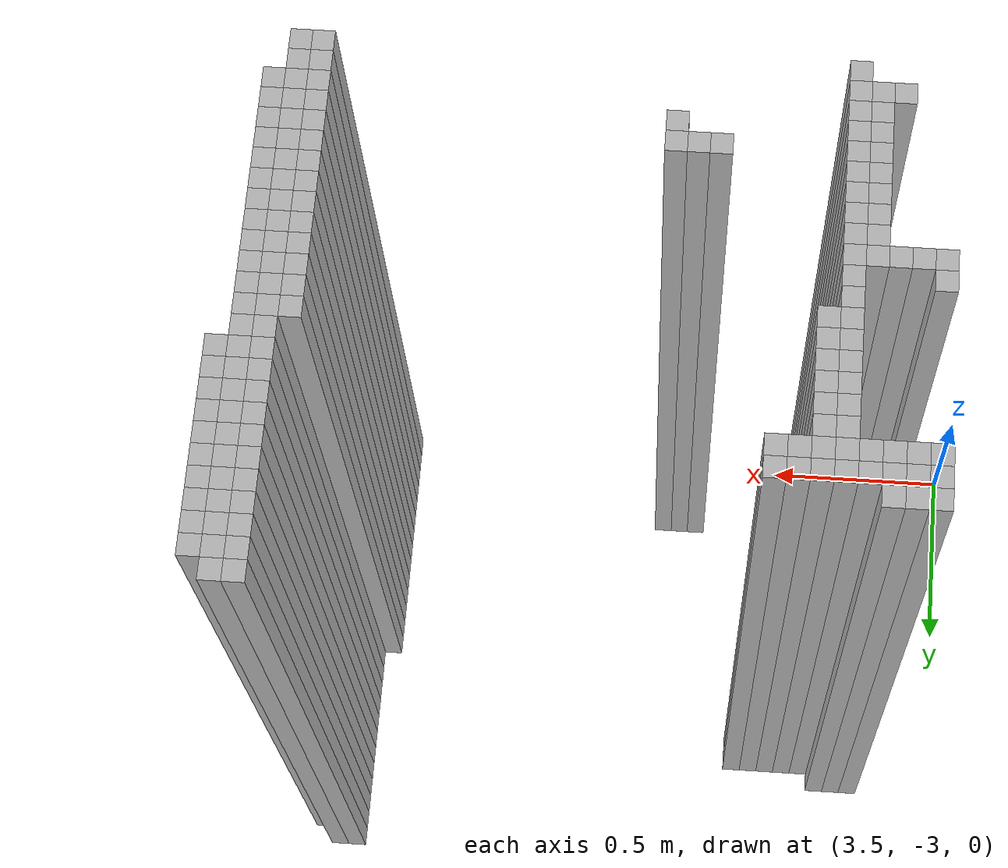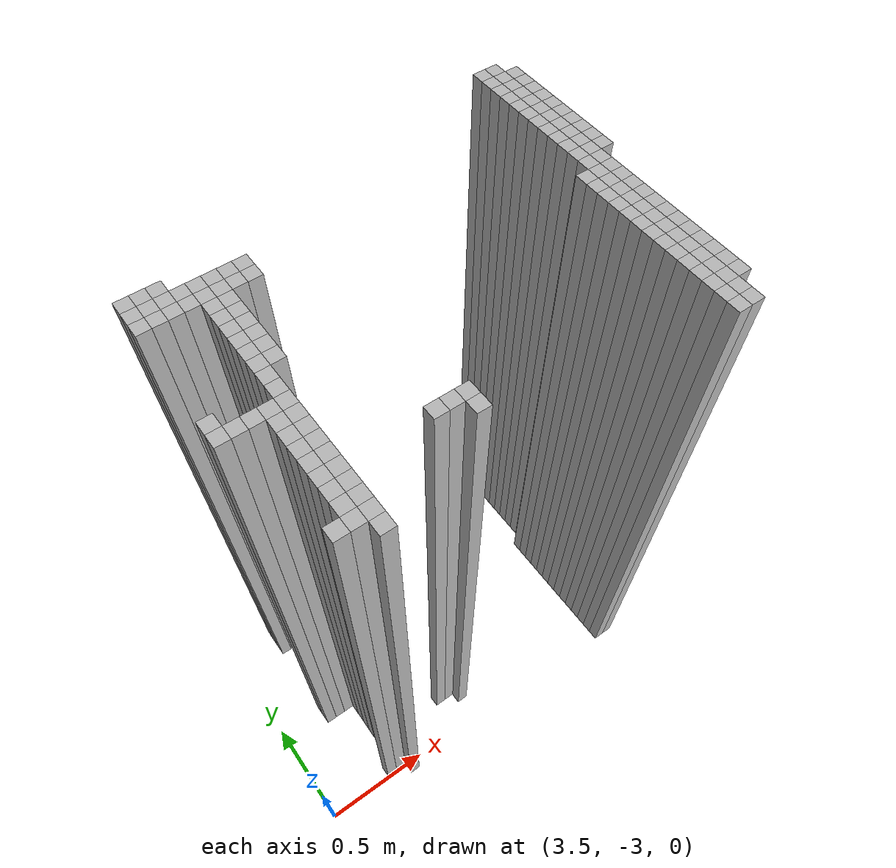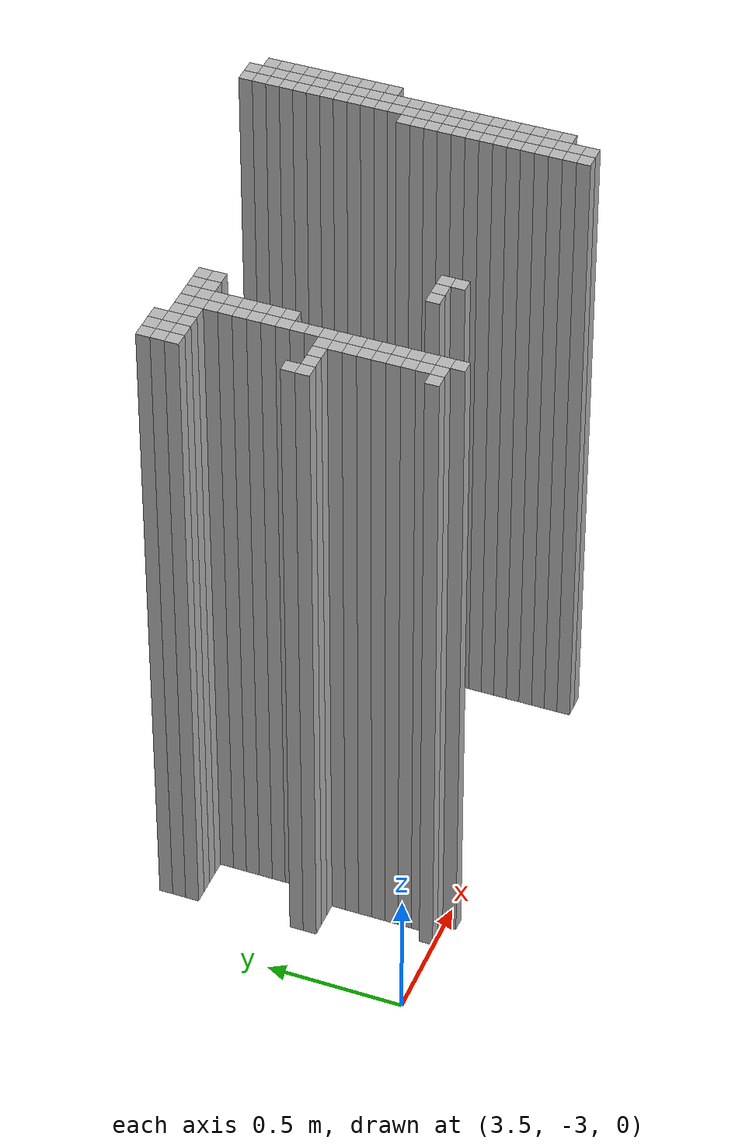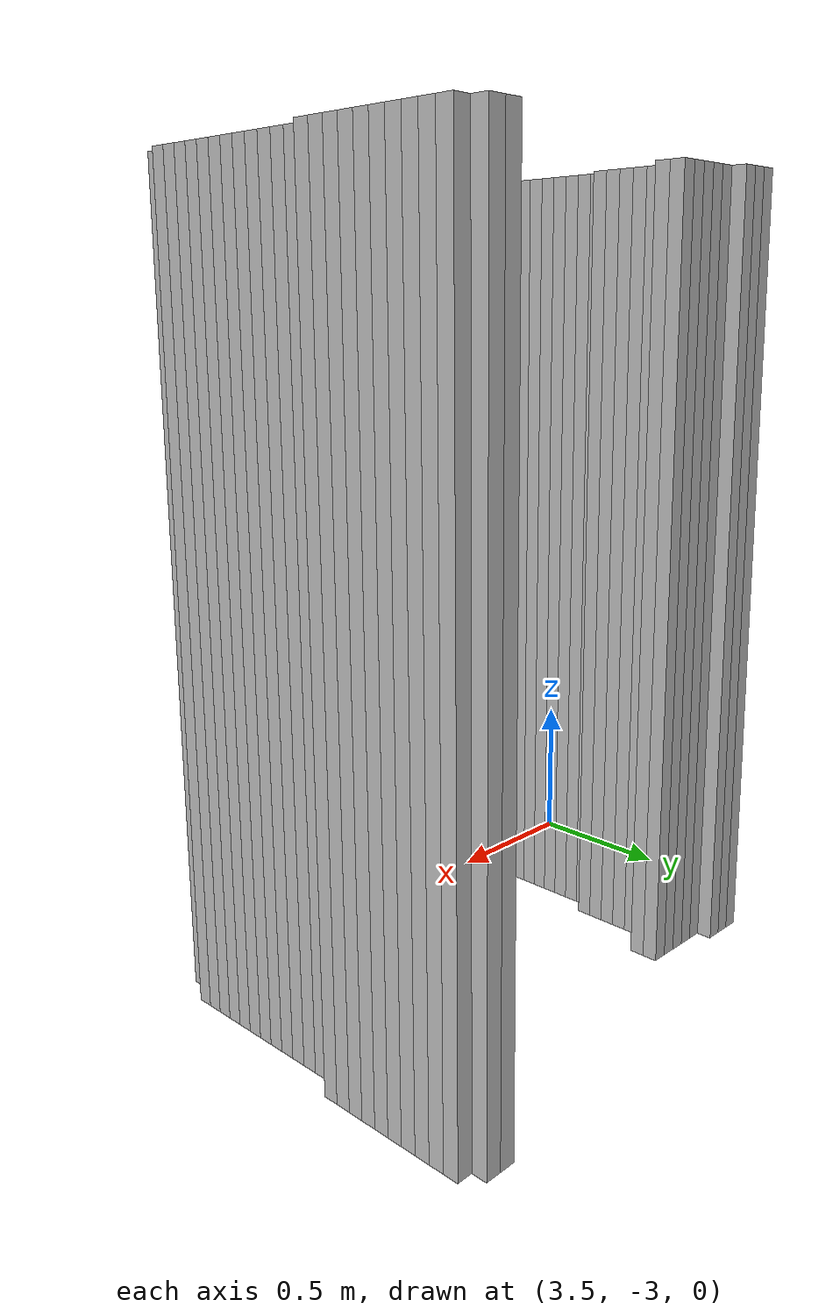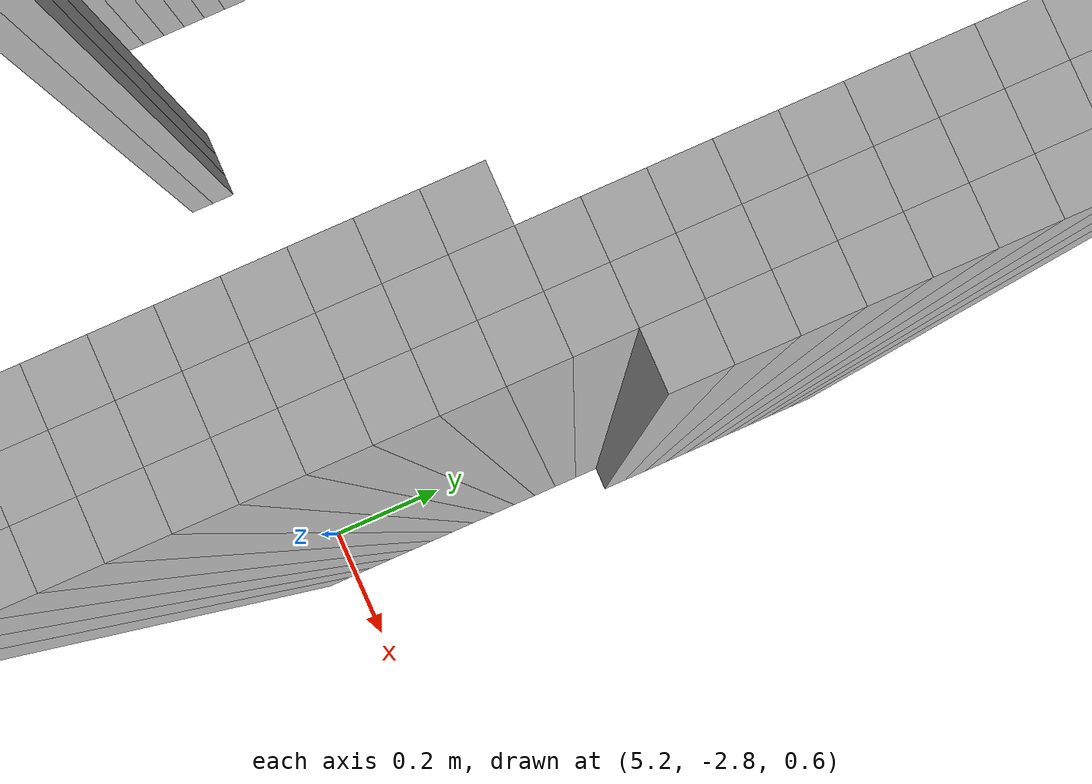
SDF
<sdf version="1.9">
 <world name="map_world">
  <model name="wall_327_189">
   <static>true</static>
   <pose>5.189 -1.770 1.250 0 0 0</pose>
   <link name="link">
    <collision name="collision"><geometry><box><size>0.050 0.050 2.500</size></box></geometry></collision>
    <visual name="visual"><geometry><box><size>0.050 0.050 2.500</size></box></geometry></visual>
   </link>
  </model>
  <model name="wall_328_189">
   <static>true</static>
   <pose>5.239 -1.770 1.250 0 0 0</pose>
   <link name="link">
    <collision name="collision"><geometry><box><size>0.050 0.050 2.500</size></box></geometry></collision>
    <visual name="visual"><geometry><box><size>0.050 0.050 2.500</size></box></geometry></visual>
   </link>
  </model>
  <model name="wall_327_190">
   <static>true</static>
   <pose>5.189 -1.820 1.250 0 0 0</pose>
   <link name="link">
    <collision name="collision"><geometry><box><size>0.050 0.050 2.500</size></box></geometry></collision>
    <visual name="visual"><geometry><box><size>0.050 0.050 2.500</size></box></geometry></visual>
   </link>
  </model>
  <model name="wall_328_190">
   <static>true</static>
   <pose>5.239 -1.820 1.250 0 0 0</pose>
   <link name="link">
    <collision name="collision"><geometry><box><size>0.050 0.050 2.500</size></box></geometry></collision>
    <visual name="visual"><geometry><box><size>0.050 0.050 2.500</size></box></geometry></visual>
   </link>
  </model>
  <model name="wall_329_190">
   <static>true</static>
   <pose>5.289 -1.820 1.250 0 0 0</pose>
   <link name="link">
    <collision name="collision"><geometry><box><size>0.050 0.050 2.500</size></box></geometry></collision>
    <visual name="visual"><geometry><box><size>0.050 0.050 2.500</size></box></geometry></visual>
   </link>
  </model>
  <model name="wall_327_191">
   <static>true</static>
   <pose>5.189 -1.870 1.250 0 0 0</pose>
   <link name="link">
    <collision name="collision"><geometry><box><size>0.050 0.050 2.500</size></box></geometry></collision>
    <visual name="visual"><geometry><box><size>0.050 0.050 2.500</size></box></geometry></visual>
   </link>
  </model>
  <model name="wall_328_191">
   <static>true</static>
   <pose>5.239 -1.870 1.250 0 0 0</pose>
   <link name="link">
    <collision name="collision"><geometry><box><size>0.050 0.050 2.500</size></box></geometry></collision>
    <visual name="visual"><geometry><box><size>0.050 0.050 2.500</size></box></geometry></visual>
   </link>
  </model>
  <model name="wall_329_191">
   <static>true</static>
   <pose>5.289 -1.870 1.250 0 0 0</pose>
   <link name="link">
    <collision name="collision"><geometry><box><size>0.050 0.050 2.500</size></box></geometry></collision>
    <visual name="visual"><geometry><box><size>0.050 0.050 2.500</size></box></geometry></visual>
   </link>
  </model>
  <model name="wall_327_192">
   <static>true</static>
   <pose>5.189 -1.920 1.250 0 0 0</pose>
   <link name="link">
    <collision name="collision"><geometry><box><size>0.050 0.050 2.500</size></box></geometry></collision>
    <visual name="visual"><geometry><box><size>0.050 0.050 2.500</size></box></geometry></visual>
   </link>
  </model>
  <model name="wall_328_192">
   <static>true</static>
   <pose>5.239 -1.920 1.250 0 0 0</pose>
   <link name="link">
    <collision name="collision"><geometry><box><size>0.050 0.050 2.500</size></box></geometry></collision>
    <visual name="visual"><geometry><box><size>0.050 0.050 2.500</size></box></geometry></visual>
   </link>
  </model>
  <model name="wall_329_192">
   <static>true</static>
   <pose>5.289 -1.920 1.250 0 0 0</pose>
   <link name="link">
    <collision name="collision"><geometry><box><size>0.050 0.050 2.500</size></box></geometry></collision>
    <visual name="visual"><geometry><box><size>0.050 0.050 2.500</size></box></geometry></visual>
   </link>
  </model>
  <model name="wall_327_193">
   <static>true</static>
   <pose>5.189 -1.970 1.250 0 0 0</pose>
   <link name="link">
    <collision name="collision"><geometry><box><size>0.050 0.050 2.500</size></box></geometry></collision>
    <visual name="visual"><geometry><box><size>0.050 0.050 2.500</size></box></geometry></visual>
   </link>
  </model>
  <model name="wall_328_193">
   <static>true</static>
   <pose>5.239 -1.970 1.250 0 0 0</pose>
   <link name="link">
    <collision name="collision"><geometry><box><size>0.050 0.050 2.500</size></box></geometry></collision>
    <visual name="visual"><geometry><box><size>0.050 0.050 2.500</size></box></geometry></visual>
   </link>
  </model>
  <model name="wall_329_193">
   <static>true</static>
   <pose>5.289 -1.970 1.250 0 0 0</pose>
   <link name="link">
    <collision name="collision"><geometry><box><size>0.050 0.050 2.500</size></box></geometry></collision>
    <visual name="visual"><geometry><box><size>0.050 0.050 2.500</size></box></geometry></visual>
   </link>
  </model>
  <model name="wall_298_194">
   <static>true</static>
   <pose>3.739 -2.020 1.250 0 0 0</pose>
   <link name="link">
    <collision name="collision"><geometry><box><size>0.050 0.050 2.500</size></box></geometry></collision>
    <visual name="visual"><geometry><box><size>0.050 0.050 2.500</size></box></geometry></visual>
   </link>
  </model>
  <model name="wall_299_194">
   <static>true</static>
   <pose>3.789 -2.020 1.250 0 0 0</pose>
   <link name="link">
    <collision name="collision"><geometry><box><size>0.050 0.050 2.500</size></box></geometry></collision>
    <visual name="visual"><geometry><box><size>0.050 0.050 2.500</size></box></geometry></visual>
   </link>
  </model>
  <model name="wall_300_194">
   <static>true</static>
   <pose>3.839 -2.020 1.250 0 0 0</pose>
   <link name="link">
    <collision name="collision"><geometry><box><size>0.050 0.050 2.500</size></box></geometry></collision>
    <visual name="visual"><geometry><box><size>0.050 0.050 2.500</size></box></geometry></visual>
   </link>
  </model>
  <model name="wall_327_194">
   <static>true</static>
   <pose>5.189 -2.020 1.250 0 0 0</pose>
   <link name="link">
    <collision name="collision"><geometry><box><size>0.050 0.050 2.500</size></box></geometry></collision>
    <visual name="visual"><geometry><box><size>0.050 0.050 2.500</size></box></geometry></visual>
   </link>
  </model>
  <model name="wall_328_194">
   <static>true</static>
   <pose>5.239 -2.020 1.250 0 0 0</pose>
   <link name="link">
    <collision name="collision"><geometry><box><size>0.050 0.050 2.500</size></box></geometry></collision>
    <visual name="visual"><geometry><box><size>0.050 0.050 2.500</size></box></geometry></visual>
   </link>
  </model>
  <model name="wall_329_194">
   <static>true</static>
   <pose>5.289 -2.020 1.250 0 0 0</pose>
   <link name="link">
    <collision name="collision"><geometry><box><size>0.050 0.050 2.500</size></box></geometry></collision>
    <visual name="visual"><geometry><box><size>0.050 0.050 2.500</size></box></geometry></visual>
   </link>
  </model>
  <model name="wall_298_195">
   <static>true</static>
   <pose>3.739 -2.070 1.250 0 0 0</pose>
   <link name="link">
    <collision name="collision"><geometry><box><size>0.050 0.050 2.500</size></box></geometry></collision>
    <visual name="visual"><geometry><box><size>0.050 0.050 2.500</size></box></geometry></visual>
   </link>
  </model>
  <model name="wall_299_195">
   <static>true</static>
   <pose>3.789 -2.070 1.250 0 0 0</pose>
   <link name="link">
    <collision name="collision"><geometry><box><size>0.050 0.050 2.500</size></box></geometry></collision>
    <visual name="visual"><geometry><box><size>0.050 0.050 2.500</size></box></geometry></visual>
   </link>
  </model>
  <model name="wall_300_195">
   <static>true</static>
   <pose>3.839 -2.070 1.250 0 0 0</pose>
   <link name="link">
    <collision name="collision"><geometry><box><size>0.050 0.050 2.500</size></box></geometry></collision>
    <visual name="visual"><geometry><box><size>0.050 0.050 2.500</size></box></geometry></visual>
   </link>
  </model>
  <model name="wall_301_195">
   <static>true</static>
   <pose>3.889 -2.070 1.250 0 0 0</pose>
   <link name="link">
    <collision name="collision"><geometry><box><size>0.050 0.050 2.500</size></box></geometry></collision>
    <visual name="visual"><geometry><box><size>0.050 0.050 2.500</size></box></geometry></visual>
   </link>
  </model>
  <model name="wall_302_195">
   <static>true</static>
   <pose>3.939 -2.070 1.250 0 0 0</pose>
   <link name="link">
    <collision name="collision"><geometry><box><size>0.050 0.050 2.500</size></box></geometry></collision>
    <visual name="visual"><geometry><box><size>0.050 0.050 2.500</size></box></geometry></visual>
   </link>
  </model>
  <model name="wall_303_195">
   <static>true</static>
   <pose>3.989 -2.070 1.250 0 0 0</pose>
   <link name="link">
    <collision name="collision"><geometry><box><size>0.050 0.050 2.500</size></box></geometry></collision>
    <visual name="visual"><geometry><box><size>0.050 0.050 2.500</size></box></geometry></visual>
   </link>
  </model>
  <model name="wall_304_195">
   <static>true</static>
   <pose>4.039 -2.070 1.250 0 0 0</pose>
   <link name="link">
    <collision name="collision"><geometry><box><size>0.050 0.050 2.500</size></box></geometry></collision>
    <visual name="visual"><geometry><box><size>0.050 0.050 2.500</size></box></geometry></visual>
   </link>
  </model>
  <model name="wall_305_195">
   <static>true</static>
   <pose>4.089 -2.070 1.250 0 0 0</pose>
   <link name="link">
    <collision name="collision"><geometry><box><size>0.050 0.050 2.500</size></box></geometry></collision>
    <visual name="visual"><geometry><box><size>0.050 0.050 2.500</size></box></geometry></visual>
   </link>
  </model>
  <model name="wall_327_195">
   <static>true</static>
   <pose>5.189 -2.070 1.250 0 0 0</pose>
   <link name="link">
    <collision name="collision"><geometry><box><size>0.050 0.050 2.500</size></box></geometry></collision>
    <visual name="visual"><geometry><box><size>0.050 0.050 2.500</size></box></geometry></visual>
   </link>
  </model>
  <model name="wall_328_195">
   <static>true</static>
   <pose>5.239 -2.070 1.250 0 0 0</pose>
   <link name="link">
    <collision name="collision"><geometry><box><size>0.050 0.050 2.500</size></box></geometry></collision>
    <visual name="visual"><geometry><box><size>0.050 0.050 2.500</size></box></geometry></visual>
   </link>
  </model>
  <model name="wall_329_195">
   <static>true</static>
   <pose>5.289 -2.070 1.250 0 0 0</pose>
   <link name="link">
    <collision name="collision"><geometry><box><size>0.050 0.050 2.500</size></box></geometry></collision>
    <visual name="visual"><geometry><box><size>0.050 0.050 2.500</size></box></geometry></visual>
   </link>
  </model>
  <model name="wall_298_196">
   <static>true</static>
   <pose>3.739 -2.120 1.250 0 0 0</pose>
   <link name="link">
    <collision name="collision"><geometry><box><size>0.050 0.050 2.500</size></box></geometry></collision>
    <visual name="visual"><geometry><box><size>0.050 0.050 2.500</size></box></geometry></visual>
   </link>
  </model>
  <model name="wall_299_196">
   <static>true</static>
   <pose>3.789 -2.120 1.250 0 0 0</pose>
   <link name="link">
    <collision name="collision"><geometry><box><size>0.050 0.050 2.500</size></box></geometry></collision>
    <visual name="visual"><geometry><box><size>0.050 0.050 2.500</size></box></geometry></visual>
   </link>
  </model>
  <model name="wall_300_196">
   <static>true</static>
   <pose>3.839 -2.120 1.250 0 0 0</pose>
   <link name="link">
    <collision name="collision"><geometry><box><size>0.050 0.050 2.500</size></box></geometry></collision>
    <visual name="visual"><geometry><box><size>0.050 0.050 2.500</size></box></geometry></visual>
   </link>
  </model>
  <model name="wall_301_196">
   <static>true</static>
   <pose>3.889 -2.120 1.250 0 0 0</pose>
   <link name="link">
    <collision name="collision"><geometry><box><size>0.050 0.050 2.500</size></box></geometry></collision>
    <visual name="visual"><geometry><box><size>0.050 0.050 2.500</size></box></geometry></visual>
   </link>
  </model>
  <model name="wall_302_196">
   <static>true</static>
   <pose>3.939 -2.120 1.250 0 0 0</pose>
   <link name="link">
    <collision name="collision"><geometry><box><size>0.050 0.050 2.500</size></box></geometry></collision>
    <visual name="visual"><geometry><box><size>0.050 0.050 2.500</size></box></geometry></visual>
   </link>
  </model>
  <model name="wall_303_196">
   <static>true</static>
   <pose>3.989 -2.120 1.250 0 0 0</pose>
   <link name="link">
    <collision name="collision"><geometry><box><size>0.050 0.050 2.500</size></box></geometry></collision>
    <visual name="visual"><geometry><box><size>0.050 0.050 2.500</size></box></geometry></visual>
   </link>
  </model>
  <model name="wall_304_196">
   <static>true</static>
   <pose>4.039 -2.120 1.250 0 0 0</pose>
   <link name="link">
    <collision name="collision"><geometry><box><size>0.050 0.050 2.500</size></box></geometry></collision>
    <visual name="visual"><geometry><box><size>0.050 0.050 2.500</size></box></geometry></visual>
   </link>
  </model>
  <model name="wall_305_196">
   <static>true</static>
   <pose>4.089 -2.120 1.250 0 0 0</pose>
   <link name="link">
    <collision name="collision"><geometry><box><size>0.050 0.050 2.500</size></box></geometry></collision>
    <visual name="visual"><geometry><box><size>0.050 0.050 2.500</size></box></geometry></visual>
   </link>
  </model>
  <model name="wall_327_196">
   <static>true</static>
   <pose>5.189 -2.120 1.250 0 0 0</pose>
   <link name="link">
    <collision name="collision"><geometry><box><size>0.050 0.050 2.500</size></box></geometry></collision>
    <visual name="visual"><geometry><box><size>0.050 0.050 2.500</size></box></geometry></visual>
   </link>
  </model>
  <model name="wall_328_196">
   <static>true</static>
   <pose>5.239 -2.120 1.250 0 0 0</pose>
   <link name="link">
    <collision name="collision"><geometry><box><size>0.050 0.050 2.500</size></box></geometry></collision>
    <visual name="visual"><geometry><box><size>0.050 0.050 2.500</size></box></geometry></visual>
   </link>
  </model>
  <model name="wall_329_196">
   <static>true</static>
   <pose>5.289 -2.120 1.250 0 0 0</pose>
   <link name="link">
    <collision name="collision"><geometry><box><size>0.050 0.050 2.500</size></box></geometry></collision>
    <visual name="visual"><geometry><box><size>0.050 0.050 2.500</size></box></geometry></visual>
   </link>
  </model>
  <model name="wall_302_197">
   <static>true</static>
   <pose>3.939 -2.170 1.250 0 0 0</pose>
   <link name="link">
    <collision name="collision"><geometry><box><size>0.050 0.050 2.500</size></box></geometry></collision>
    <visual name="visual"><geometry><box><size>0.050 0.050 2.500</size></box></geometry></visual>
   </link>
  </model>
  <model name="wall_303_197">
   <static>true</static>
   <pose>3.989 -2.170 1.250 0 0 0</pose>
   <link name="link">
    <collision name="collision"><geometry><box><size>0.050 0.050 2.500</size></box></geometry></collision>
    <visual name="visual"><geometry><box><size>0.050 0.050 2.500</size></box></geometry></visual>
   </link>
  </model>
  <model name="wall_327_197">
   <static>true</static>
   <pose>5.189 -2.170 1.250 0 0 0</pose>
   <link name="link">
    <collision name="collision"><geometry><box><size>0.050 0.050 2.500</size></box></geometry></collision>
    <visual name="visual"><geometry><box><size>0.050 0.050 2.500</size></box></geometry></visual>
   </link>
  </model>
  <model name="wall_328_197">
   <static>true</static>
   <pose>5.239 -2.170 1.250 0 0 0</pose>
   <link name="link">
    <collision name="collision"><geometry><box><size>0.050 0.050 2.500</size></box></geometry></collision>
    <visual name="visual"><geometry><box><size>0.050 0.050 2.500</size></box></geometry></visual>
   </link>
  </model>
  <model name="wall_329_197">
   <static>true</static>
   <pose>5.289 -2.170 1.250 0 0 0</pose>
   <link name="link">
    <collision name="collision"><geometry><box><size>0.050 0.050 2.500</size></box></geometry></collision>
    <visual name="visual"><geometry><box><size>0.050 0.050 2.500</size></box></geometry></visual>
   </link>
  </model>
  <model name="wall_302_198">
   <static>true</static>
   <pose>3.939 -2.220 1.250 0 0 0</pose>
   <link name="link">
    <collision name="collision"><geometry><box><size>0.050 0.050 2.500</size></box></geometry></collision>
    <visual name="visual"><geometry><box><size>0.050 0.050 2.500</size></box></geometry></visual>
   </link>
  </model>
  <model name="wall_303_198">
   <static>true</static>
   <pose>3.989 -2.220 1.250 0 0 0</pose>
   <link name="link">
    <collision name="collision"><geometry><box><size>0.050 0.050 2.500</size></box></geometry></collision>
    <visual name="visual"><geometry><box><size>0.050 0.050 2.500</size></box></geometry></visual>
   </link>
  </model>
  <model name="wall_327_198">
   <static>true</static>
   <pose>5.189 -2.220 1.250 0 0 0</pose>
   <link name="link">
    <collision name="collision"><geometry><box><size>0.050 0.050 2.500</size></box></geometry></collision>
    <visual name="visual"><geometry><box><size>0.050 0.050 2.500</size></box></geometry></visual>
   </link>
  </model>
  <model name="wall_328_198">
   <static>true</static>
   <pose>5.239 -2.220 1.250 0 0 0</pose>
   <link name="link">
    <collision name="collision"><geometry><box><size>0.050 0.050 2.500</size></box></geometry></collision>
    <visual name="visual"><geometry><box><size>0.050 0.050 2.500</size></box></geometry></visual>
   </link>
  </model>
  <model name="wall_329_198">
   <static>true</static>
   <pose>5.289 -2.220 1.250 0 0 0</pose>
   <link name="link">
    <collision name="collision"><geometry><box><size>0.050 0.050 2.500</size></box></geometry></collision>
    <visual name="visual"><geometry><box><size>0.050 0.050 2.500</size></box></geometry></visual>
   </link>
  </model>
  <model name="wall_302_199">
   <static>true</static>
   <pose>3.939 -2.270 1.250 0 0 0</pose>
   <link name="link">
    <collision name="collision"><geometry><box><size>0.050 0.050 2.500</size></box></geometry></collision>
    <visual name="visual"><geometry><box><size>0.050 0.050 2.500</size></box></geometry></visual>
   </link>
  </model>
  <model name="wall_303_199">
   <static>true</static>
   <pose>3.989 -2.270 1.250 0 0 0</pose>
   <link name="link">
    <collision name="collision"><geometry><box><size>0.050 0.050 2.500</size></box></geometry></collision>
    <visual name="visual"><geometry><box><size>0.050 0.050 2.500</size></box></geometry></visual>
   </link>
  </model>
  <model name="wall_327_199">
   <static>true</static>
   <pose>5.189 -2.270 1.250 0 0 0</pose>
   <link name="link">
    <collision name="collision"><geometry><box><size>0.050 0.050 2.500</size></box></geometry></collision>
    <visual name="visual"><geometry><box><size>0.050 0.050 2.500</size></box></geometry></visual>
   </link>
  </model>
  <model name="wall_328_199">
   <static>true</static>
   <pose>5.239 -2.270 1.250 0 0 0</pose>
   <link name="link">
    <collision name="collision"><geometry><box><size>0.050 0.050 2.500</size></box></geometry></collision>
    <visual name="visual"><geometry><box><size>0.050 0.050 2.500</size></box></geometry></visual>
   </link>
  </model>
  <model name="wall_329_199">
   <static>true</static>
   <pose>5.289 -2.270 1.250 0 0 0</pose>
   <link name="link">
    <collision name="collision"><geometry><box><size>0.050 0.050 2.500</size></box></geometry></collision>
    <visual name="visual"><geometry><box><size>0.050 0.050 2.500</size></box></geometry></visual>
   </link>
  </model>
  <model name="wall_302_200">
   <static>true</static>
   <pose>3.939 -2.320 1.250 0 0 0</pose>
   <link name="link">
    <collision name="collision"><geometry><box><size>0.050 0.050 2.500</size></box></geometry></collision>
    <visual name="visual"><geometry><box><size>0.050 0.050 2.500</size></box></geometry></visual>
   </link>
  </model>
  <model name="wall_303_200">
   <static>true</static>
   <pose>3.989 -2.320 1.250 0 0 0</pose>
   <link name="link">
    <collision name="collision"><geometry><box><size>0.050 0.050 2.500</size></box></geometry></collision>
    <visual name="visual"><geometry><box><size>0.050 0.050 2.500</size></box></geometry></visual>
   </link>
  </model>
  <model name="wall_327_200">
   <static>true</static>
   <pose>5.189 -2.320 1.250 0 0 0</pose>
   <link name="link">
    <collision name="collision"><geometry><box><size>0.050 0.050 2.500</size></box></geometry></collision>
    <visual name="visual"><geometry><box><size>0.050 0.050 2.500</size></box></geometry></visual>
   </link>
  </model>
  <model name="wall_328_200">
   <static>true</static>
   <pose>5.239 -2.320 1.250 0 0 0</pose>
   <link name="link">
    <collision name="collision"><geometry><box><size>0.050 0.050 2.500</size></box></geometry></collision>
    <visual name="visual"><geometry><box><size>0.050 0.050 2.500</size></box></geometry></visual>
   </link>
  </model>
  <model name="wall_302_201">
   <static>true</static>
   <pose>3.939 -2.370 1.250 0 0 0</pose>
   <link name="link">
    <collision name="collision"><geometry><box><size>0.050 0.050 2.500</size></box></geometry></collision>
    <visual name="visual"><geometry><box><size>0.050 0.050 2.500</size></box></geometry></visual>
   </link>
  </model>
  <model name="wall_303_201">
   <static>true</static>
   <pose>3.989 -2.370 1.250 0 0 0</pose>
   <link name="link">
    <collision name="collision"><geometry><box><size>0.050 0.050 2.500</size></box></geometry></collision>
    <visual name="visual"><geometry><box><size>0.050 0.050 2.500</size></box></geometry></visual>
   </link>
  </model>
  <model name="wall_326_201">
   <static>true</static>
   <pose>5.139 -2.370 1.250 0 0 0</pose>
   <link name="link">
    <collision name="collision"><geometry><box><size>0.050 0.050 2.500</size></box></geometry></collision>
    <visual name="visual"><geometry><box><size>0.050 0.050 2.500</size></box></geometry></visual>
   </link>
  </model>
  <model name="wall_327_201">
   <static>true</static>
   <pose>5.189 -2.370 1.250 0 0 0</pose>
   <link name="link">
    <collision name="collision"><geometry><box><size>0.050 0.050 2.500</size></box></geometry></collision>
    <visual name="visual"><geometry><box><size>0.050 0.050 2.500</size></box></geometry></visual>
   </link>
  </model>
  <model name="wall_328_201">
   <static>true</static>
   <pose>5.239 -2.370 1.250 0 0 0</pose>
   <link name="link">
    <collision name="collision"><geometry><box><size>0.050 0.050 2.500</size></box></geometry></collision>
    <visual name="visual"><geometry><box><size>0.050 0.050 2.500</size></box></geometry></visual>
   </link>
  </model>
  <model name="wall_302_202">
   <static>true</static>
   <pose>3.939 -2.420 1.250 0 0 0</pose>
   <link name="link">
    <collision name="collision"><geometry><box><size>0.050 0.050 2.500</size></box></geometry></collision>
    <visual name="visual"><geometry><box><size>0.050 0.050 2.500</size></box></geometry></visual>
   </link>
  </model>
  <model name="wall_303_202">
   <static>true</static>
   <pose>3.989 -2.420 1.250 0 0 0</pose>
   <link name="link">
    <collision name="collision"><geometry><box><size>0.050 0.050 2.500</size></box></geometry></collision>
    <visual name="visual"><geometry><box><size>0.050 0.050 2.500</size></box></geometry></visual>
   </link>
  </model>
  <model name="wall_326_202">
   <static>true</static>
   <pose>5.139 -2.420 1.250 0 0 0</pose>
   <link name="link">
    <collision name="collision"><geometry><box><size>0.050 0.050 2.500</size></box></geometry></collision>
    <visual name="visual"><geometry><box><size>0.050 0.050 2.500</size></box></geometry></visual>
   </link>
  </model>
  <model name="wall_327_202">
   <static>true</static>
   <pose>5.189 -2.420 1.250 0 0 0</pose>
   <link name="link">
    <collision name="collision"><geometry><box><size>0.050 0.050 2.500</size></box></geometry></collision>
    <visual name="visual"><geometry><box><size>0.050 0.050 2.500</size></box></geometry></visual>
   </link>
  </model>
  <model name="wall_328_202">
   <static>true</static>
   <pose>5.239 -2.420 1.250 0 0 0</pose>
   <link name="link">
    <collision name="collision"><geometry><box><size>0.050 0.050 2.500</size></box></geometry></collision>
    <visual name="visual"><geometry><box><size>0.050 0.050 2.500</size></box></geometry></visual>
   </link>
  </model>
  <model name="wall_302_203">
   <static>true</static>
   <pose>3.939 -2.470 1.250 0 0 0</pose>
   <link name="link">
    <collision name="collision"><geometry><box><size>0.050 0.050 2.500</size></box></geometry></collision>
    <visual name="visual"><geometry><box><size>0.050 0.050 2.500</size></box></geometry></visual>
   </link>
  </model>
  <model name="wall_326_203">
   <static>true</static>
   <pose>5.139 -2.470 1.250 0 0 0</pose>
   <link name="link">
    <collision name="collision"><geometry><box><size>0.050 0.050 2.500</size></box></geometry></collision>
    <visual name="visual"><geometry><box><size>0.050 0.050 2.500</size></box></geometry></visual>
   </link>
  </model>
  <model name="wall_327_203">
   <static>true</static>
   <pose>5.189 -2.470 1.250 0 0 0</pose>
   <link name="link">
    <collision name="collision"><geometry><box><size>0.050 0.050 2.500</size></box></geometry></collision>
    <visual name="visual"><geometry><box><size>0.050 0.050 2.500</size></box></geometry></visual>
   </link>
  </model>
  <model name="wall_328_203">
   <static>true</static>
   <pose>5.239 -2.470 1.250 0 0 0</pose>
   <link name="link">
    <collision name="collision"><geometry><box><size>0.050 0.050 2.500</size></box></geometry></collision>
    <visual name="visual"><geometry><box><size>0.050 0.050 2.500</size></box></geometry></visual>
   </link>
  </model>
  <model name="wall_298_204">
   <static>true</static>
   <pose>3.739 -2.520 1.250 0 0 0</pose>
   <link name="link">
    <collision name="collision"><geometry><box><size>0.050 0.050 2.500</size></box></geometry></collision>
    <visual name="visual"><geometry><box><size>0.050 0.050 2.500</size></box></geometry></visual>
   </link>
  </model>
  <model name="wall_302_204">
   <static>true</static>
   <pose>3.939 -2.520 1.250 0 0 0</pose>
   <link name="link">
    <collision name="collision"><geometry><box><size>0.050 0.050 2.500</size></box></geometry></collision>
    <visual name="visual"><geometry><box><size>0.050 0.050 2.500</size></box></geometry></visual>
   </link>
  </model>
  <model name="wall_326_204">
   <static>true</static>
   <pose>5.139 -2.520 1.250 0 0 0</pose>
   <link name="link">
    <collision name="collision"><geometry><box><size>0.050 0.050 2.500</size></box></geometry></collision>
    <visual name="visual"><geometry><box><size>0.050 0.050 2.500</size></box></geometry></visual>
   </link>
  </model>
  <model name="wall_327_204">
   <static>true</static>
   <pose>5.189 -2.520 1.250 0 0 0</pose>
   <link name="link">
    <collision name="collision"><geometry><box><size>0.050 0.050 2.500</size></box></geometry></collision>
    <visual name="visual"><geometry><box><size>0.050 0.050 2.500</size></box></geometry></visual>
   </link>
  </model>
  <model name="wall_328_204">
   <static>true</static>
   <pose>5.239 -2.520 1.250 0 0 0</pose>
   <link name="link">
    <collision name="collision"><geometry><box><size>0.050 0.050 2.500</size></box></geometry></collision>
    <visual name="visual"><geometry><box><size>0.050 0.050 2.500</size></box></geometry></visual>
   </link>
  </model>
  <model name="wall_298_205">
   <static>true</static>
   <pose>3.739 -2.570 1.250 0 0 0</pose>
   <link name="link">
    <collision name="collision"><geometry><box><size>0.050 0.050 2.500</size></box></geometry></collision>
    <visual name="visual"><geometry><box><size>0.050 0.050 2.500</size></box></geometry></visual>
   </link>
  </model>
  <model name="wall_299_205">
   <static>true</static>
   <pose>3.789 -2.570 1.250 0 0 0</pose>
   <link name="link">
    <collision name="collision"><geometry><box><size>0.050 0.050 2.500</size></box></geometry></collision>
    <visual name="visual"><geometry><box><size>0.050 0.050 2.500</size></box></geometry></visual>
   </link>
  </model>
  <model name="wall_300_205">
   <static>true</static>
   <pose>3.839 -2.570 1.250 0 0 0</pose>
   <link name="link">
    <collision name="collision"><geometry><box><size>0.050 0.050 2.500</size></box></geometry></collision>
    <visual name="visual"><geometry><box><size>0.050 0.050 2.500</size></box></geometry></visual>
   </link>
  </model>
  <model name="wall_301_205">
   <static>true</static>
   <pose>3.889 -2.570 1.250 0 0 0</pose>
   <link name="link">
    <collision name="collision"><geometry><box><size>0.050 0.050 2.500</size></box></geometry></collision>
    <visual name="visual"><geometry><box><size>0.050 0.050 2.500</size></box></geometry></visual>
   </link>
  </model>
  <model name="wall_302_205">
   <static>true</static>
   <pose>3.939 -2.570 1.250 0 0 0</pose>
   <link name="link">
    <collision name="collision"><geometry><box><size>0.050 0.050 2.500</size></box></geometry></collision>
    <visual name="visual"><geometry><box><size>0.050 0.050 2.500</size></box></geometry></visual>
   </link>
  </model>
  <model name="wall_326_205">
   <static>true</static>
   <pose>5.139 -2.570 1.250 0 0 0</pose>
   <link name="link">
    <collision name="collision"><geometry><box><size>0.050 0.050 2.500</size></box></geometry></collision>
    <visual name="visual"><geometry><box><size>0.050 0.050 2.500</size></box></geometry></visual>
   </link>
  </model>
  <model name="wall_327_205">
   <static>true</static>
   <pose>5.189 -2.570 1.250 0 0 0</pose>
   <link name="link">
    <collision name="collision"><geometry><box><size>0.050 0.050 2.500</size></box></geometry></collision>
    <visual name="visual"><geometry><box><size>0.050 0.050 2.500</size></box></geometry></visual>
   </link>
  </model>
  <model name="wall_328_205">
   <static>true</static>
   <pose>5.239 -2.570 1.250 0 0 0</pose>
   <link name="link">
    <collision name="collision"><geometry><box><size>0.050 0.050 2.500</size></box></geometry></collision>
    <visual name="visual"><geometry><box><size>0.050 0.050 2.500</size></box></geometry></visual>
   </link>
  </model>
  <model name="wall_301_206">
   <static>true</static>
   <pose>3.889 -2.620 1.250 0 0 0</pose>
   <link name="link">
    <collision name="collision"><geometry><box><size>0.050 0.050 2.500</size></box></geometry></collision>
    <visual name="visual"><geometry><box><size>0.050 0.050 2.500</size></box></geometry></visual>
   </link>
  </model>
  <model name="wall_302_206">
   <static>true</static>
   <pose>3.939 -2.620 1.250 0 0 0</pose>
   <link name="link">
    <collision name="collision"><geometry><box><size>0.050 0.050 2.500</size></box></geometry></collision>
    <visual name="visual"><geometry><box><size>0.050 0.050 2.500</size></box></geometry></visual>
   </link>
  </model>
  <model name="wall_326_206">
   <static>true</static>
   <pose>5.139 -2.620 1.250 0 0 0</pose>
   <link name="link">
    <collision name="collision"><geometry><box><size>0.050 0.050 2.500</size></box></geometry></collision>
    <visual name="visual"><geometry><box><size>0.050 0.050 2.500</size></box></geometry></visual>
   </link>
  </model>
  <model name="wall_327_206">
   <static>true</static>
   <pose>5.189 -2.620 1.250 0 0 0</pose>
   <link name="link">
    <collision name="collision"><geometry><box><size>0.050 0.050 2.500</size></box></geometry></collision>
    <visual name="visual"><geometry><box><size>0.050 0.050 2.500</size></box></geometry></visual>
   </link>
  </model>
  <model name="wall_328_206">
   <static>true</static>
   <pose>5.239 -2.620 1.250 0 0 0</pose>
   <link name="link">
    <collision name="collision"><geometry><box><size>0.050 0.050 2.500</size></box></geometry></collision>
    <visual name="visual"><geometry><box><size>0.050 0.050 2.500</size></box></geometry></visual>
   </link>
  </model>
  <model name="wall_301_207">
   <static>true</static>
   <pose>3.889 -2.670 1.250 0 0 0</pose>
   <link name="link">
    <collision name="collision"><geometry><box><size>0.050 0.050 2.500</size></box></geometry></collision>
    <visual name="visual"><geometry><box><size>0.050 0.050 2.500</size></box></geometry></visual>
   </link>
  </model>
  <model name="wall_302_207">
   <static>true</static>
   <pose>3.939 -2.670 1.250 0 0 0</pose>
   <link name="link">
    <collision name="collision"><geometry><box><size>0.050 0.050 2.500</size></box></geometry></collision>
    <visual name="visual"><geometry><box><size>0.050 0.050 2.500</size></box></geometry></visual>
   </link>
  </model>
  <model name="wall_326_207">
   <static>true</static>
   <pose>5.139 -2.670 1.250 0 0 0</pose>
   <link name="link">
    <collision name="collision"><geometry><box><size>0.050 0.050 2.500</size></box></geometry></collision>
    <visual name="visual"><geometry><box><size>0.050 0.050 2.500</size></box></geometry></visual>
   </link>
  </model>
  <model name="wall_327_207">
   <static>true</static>
   <pose>5.189 -2.670 1.250 0 0 0</pose>
   <link name="link">
    <collision name="collision"><geometry><box><size>0.050 0.050 2.500</size></box></geometry></collision>
    <visual name="visual"><geometry><box><size>0.050 0.050 2.500</size></box></geometry></visual>
   </link>
  </model>
  <model name="wall_328_207">
   <static>true</static>
   <pose>5.239 -2.670 1.250 0 0 0</pose>
   <link name="link">
    <collision name="collision"><geometry><box><size>0.050 0.050 2.500</size></box></geometry></collision>
    <visual name="visual"><geometry><box><size>0.050 0.050 2.500</size></box></geometry></visual>
   </link>
  </model>
  <model name="wall_301_208">
   <static>true</static>
   <pose>3.889 -2.720 1.250 0 0 0</pose>
   <link name="link">
    <collision name="collision"><geometry><box><size>0.050 0.050 2.500</size></box></geometry></collision>
    <visual name="visual"><geometry><box><size>0.050 0.050 2.500</size></box></geometry></visual>
   </link>
  </model>
  <model name="wall_302_208">
   <static>true</static>
   <pose>3.939 -2.720 1.250 0 0 0</pose>
   <link name="link">
    <collision name="collision"><geometry><box><size>0.050 0.050 2.500</size></box></geometry></collision>
    <visual name="visual"><geometry><box><size>0.050 0.050 2.500</size></box></geometry></visual>
   </link>
  </model>
  <model name="wall_326_208">
   <static>true</static>
   <pose>5.139 -2.720 1.250 0 0 0</pose>
   <link name="link">
    <collision name="collision"><geometry><box><size>0.050 0.050 2.500</size></box></geometry></collision>
    <visual name="visual"><geometry><box><size>0.050 0.050 2.500</size></box></geometry></visual>
   </link>
  </model>
  <model name="wall_327_208">
   <static>true</static>
   <pose>5.189 -2.720 1.250 0 0 0</pose>
   <link name="link">
    <collision name="collision"><geometry><box><size>0.050 0.050 2.500</size></box></geometry></collision>
    <visual name="visual"><geometry><box><size>0.050 0.050 2.500</size></box></geometry></visual>
   </link>
  </model>
  <model name="wall_328_208">
   <static>true</static>
   <pose>5.239 -2.720 1.250 0 0 0</pose>
   <link name="link">
    <collision name="collision"><geometry><box><size>0.050 0.050 2.500</size></box></geometry></collision>
    <visual name="visual"><geometry><box><size>0.050 0.050 2.500</size></box></geometry></visual>
   </link>
  </model>
  <model name="wall_301_209">
   <static>true</static>
   <pose>3.889 -2.770 1.250 0 0 0</pose>
   <link name="link">
    <collision name="collision"><geometry><box><size>0.050 0.050 2.500</size></box></geometry></collision>
    <visual name="visual"><geometry><box><size>0.050 0.050 2.500</size></box></geometry></visual>
   </link>
  </model>
  <model name="wall_302_209">
   <static>true</static>
   <pose>3.939 -2.770 1.250 0 0 0</pose>
   <link name="link">
    <collision name="collision"><geometry><box><size>0.050 0.050 2.500</size></box></geometry></collision>
    <visual name="visual"><geometry><box><size>0.050 0.050 2.500</size></box></geometry></visual>
   </link>
  </model>
  <model name="wall_326_209">
   <static>true</static>
   <pose>5.139 -2.770 1.250 0 0 0</pose>
   <link name="link">
    <collision name="collision"><geometry><box><size>0.050 0.050 2.500</size></box></geometry></collision>
    <visual name="visual"><geometry><box><size>0.050 0.050 2.500</size></box></geometry></visual>
   </link>
  </model>
  <model name="wall_327_209">
   <static>true</static>
   <pose>5.189 -2.770 1.250 0 0 0</pose>
   <link name="link">
    <collision name="collision"><geometry><box><size>0.050 0.050 2.500</size></box></geometry></collision>
    <visual name="visual"><geometry><box><size>0.050 0.050 2.500</size></box></geometry></visual>
   </link>
  </model>
  <model name="wall_328_209">
   <static>true</static>
   <pose>5.239 -2.770 1.250 0 0 0</pose>
   <link name="link">
    <collision name="collision"><geometry><box><size>0.050 0.050 2.500</size></box></geometry></collision>
    <visual name="visual"><geometry><box><size>0.050 0.050 2.500</size></box></geometry></visual>
   </link>
  </model>
  <model name="wall_301_210">
   <static>true</static>
   <pose>3.889 -2.820 1.250 0 0 0</pose>
   <link name="link">
    <collision name="collision"><geometry><box><size>0.050 0.050 2.500</size></box></geometry></collision>
    <visual name="visual"><geometry><box><size>0.050 0.050 2.500</size></box></geometry></visual>
   </link>
  </model>
  <model name="wall_302_210">
   <static>true</static>
   <pose>3.939 -2.820 1.250 0 0 0</pose>
   <link name="link">
    <collision name="collision"><geometry><box><size>0.050 0.050 2.500</size></box></geometry></collision>
    <visual name="visual"><geometry><box><size>0.050 0.050 2.500</size></box></geometry></visual>
   </link>
  </model>
  <model name="wall_308_210">
   <static>true</static>
   <pose>4.239 -2.820 1.250 0 0 0</pose>
   <link name="link">
    <collision name="collision"><geometry><box><size>0.050 0.050 2.500</size></box></geometry></collision>
    <visual name="visual"><geometry><box><size>0.050 0.050 2.500</size></box></geometry></visual>
   </link>
  </model>
  <model name="wall_309_210">
   <static>true</static>
   <pose>4.289 -2.820 1.250 0 0 0</pose>
   <link name="link">
    <collision name="collision"><geometry><box><size>0.050 0.050 2.500</size></box></geometry></collision>
    <visual name="visual"><geometry><box><size>0.050 0.050 2.500</size></box></geometry></visual>
   </link>
  </model>
  <model name="wall_310_210">
   <static>true</static>
   <pose>4.339 -2.820 1.250 0 0 0</pose>
   <link name="link">
    <collision name="collision"><geometry><box><size>0.050 0.050 2.500</size></box></geometry></collision>
    <visual name="visual"><geometry><box><size>0.050 0.050 2.500</size></box></geometry></visual>
   </link>
  </model>
  <model name="wall_326_210">
   <static>true</static>
   <pose>5.139 -2.820 1.250 0 0 0</pose>
   <link name="link">
    <collision name="collision"><geometry><box><size>0.050 0.050 2.500</size></box></geometry></collision>
    <visual name="visual"><geometry><box><size>0.050 0.050 2.500</size></box></geometry></visual>
   </link>
  </model>
  <model name="wall_327_210">
   <static>true</static>
   <pose>5.189 -2.820 1.250 0 0 0</pose>
   <link name="link">
    <collision name="collision"><geometry><box><size>0.050 0.050 2.500</size></box></geometry></collision>
    <visual name="visual"><geometry><box><size>0.050 0.050 2.500</size></box></geometry></visual>
   </link>
  </model>
  <model name="wall_328_210">
   <static>true</static>
   <pose>5.239 -2.820 1.250 0 0 0</pose>
   <link name="link">
    <collision name="collision"><geometry><box><size>0.050 0.050 2.500</size></box></geometry></collision>
    <visual name="visual"><geometry><box><size>0.050 0.050 2.500</size></box></geometry></visual>
   </link>
  </model>
  <model name="wall_301_211">
   <static>true</static>
   <pose>3.889 -2.870 1.250 0 0 0</pose>
   <link name="link">
    <collision name="collision"><geometry><box><size>0.050 0.050 2.500</size></box></geometry></collision>
    <visual name="visual"><geometry><box><size>0.050 0.050 2.500</size></box></geometry></visual>
   </link>
  </model>
  <model name="wall_302_211">
   <static>true</static>
   <pose>3.939 -2.870 1.250 0 0 0</pose>
   <link name="link">
    <collision name="collision"><geometry><box><size>0.050 0.050 2.500</size></box></geometry></collision>
    <visual name="visual"><geometry><box><size>0.050 0.050 2.500</size></box></geometry></visual>
   </link>
  </model>
  <model name="wall_310_211">
   <static>true</static>
   <pose>4.339 -2.870 1.250 0 0 0</pose>
   <link name="link">
    <collision name="collision"><geometry><box><size>0.050 0.050 2.500</size></box></geometry></collision>
    <visual name="visual"><geometry><box><size>0.050 0.050 2.500</size></box></geometry></visual>
   </link>
  </model>
  <model name="wall_326_211">
   <static>true</static>
   <pose>5.139 -2.870 1.250 0 0 0</pose>
   <link name="link">
    <collision name="collision"><geometry><box><size>0.050 0.050 2.500</size></box></geometry></collision>
    <visual name="visual"><geometry><box><size>0.050 0.050 2.500</size></box></geometry></visual>
   </link>
  </model>
  <model name="wall_327_211">
   <static>true</static>
   <pose>5.189 -2.870 1.250 0 0 0</pose>
   <link name="link">
    <collision name="collision"><geometry><box><size>0.050 0.050 2.500</size></box></geometry></collision>
    <visual name="visual"><geometry><box><size>0.050 0.050 2.500</size></box></geometry></visual>
   </link>
  </model>
  <model name="wall_328_211">
   <static>true</static>
   <pose>5.239 -2.870 1.250 0 0 0</pose>
   <link name="link">
    <collision name="collision"><geometry><box><size>0.050 0.050 2.500</size></box></geometry></collision>
    <visual name="visual"><geometry><box><size>0.050 0.050 2.500</size></box></geometry></visual>
   </link>
  </model>
  <model name="wall_301_212">
   <static>true</static>
   <pose>3.889 -2.920 1.250 0 0 0</pose>
   <link name="link">
    <collision name="collision"><geometry><box><size>0.050 0.050 2.500</size></box></geometry></collision>
    <visual name="visual"><geometry><box><size>0.050 0.050 2.500</size></box></geometry></visual>
   </link>
  </model>
  <model name="wall_302_212">
   <static>true</static>
   <pose>3.939 -2.920 1.250 0 0 0</pose>
   <link name="link">
    <collision name="collision"><geometry><box><size>0.050 0.050 2.500</size></box></geometry></collision>
    <visual name="visual"><geometry><box><size>0.050 0.050 2.500</size></box></geometry></visual>
   </link>
  </model>
  <model name="wall_326_212">
   <static>true</static>
   <pose>5.139 -2.920 1.250 0 0 0</pose>
   <link name="link">
    <collision name="collision"><geometry><box><size>0.050 0.050 2.500</size></box></geometry></collision>
    <visual name="visual"><geometry><box><size>0.050 0.050 2.500</size></box></geometry></visual>
   </link>
  </model>
  <model name="wall_327_212">
   <static>true</static>
   <pose>5.189 -2.920 1.250 0 0 0</pose>
   <link name="link">
    <collision name="collision"><geometry><box><size>0.050 0.050 2.500</size></box></geometry></collision>
    <visual name="visual"><geometry><box><size>0.050 0.050 2.500</size></box></geometry></visual>
   </link>
  </model>
  <model name="wall_328_212">
   <static>true</static>
   <pose>5.239 -2.920 1.250 0 0 0</pose>
   <link name="link">
    <collision name="collision"><geometry><box><size>0.050 0.050 2.500</size></box></geometry></collision>
    <visual name="visual"><geometry><box><size>0.050 0.050 2.500</size></box></geometry></visual>
   </link>
  </model>
  <model name="wall_300_213">
   <static>true</static>
   <pose>3.839 -2.970 1.250 0 0 0</pose>
   <link name="link">
    <collision name="collision"><geometry><box><size>0.050 0.050 2.500</size></box></geometry></collision>
    <visual name="visual"><geometry><box><size>0.050 0.050 2.500</size></box></geometry></visual>
   </link>
  </model>
  <model name="wall_301_213">
   <static>true</static>
   <pose>3.889 -2.970 1.250 0 0 0</pose>
   <link name="link">
    <collision name="collision"><geometry><box><size>0.050 0.050 2.500</size></box></geometry></collision>
    <visual name="visual"><geometry><box><size>0.050 0.050 2.500</size></box></geometry></visual>
   </link>
  </model>
  <model name="wall_302_213">
   <static>true</static>
   <pose>3.939 -2.970 1.250 0 0 0</pose>
   <link name="link">
    <collision name="collision"><geometry><box><size>0.050 0.050 2.500</size></box></geometry></collision>
    <visual name="visual"><geometry><box><size>0.050 0.050 2.500</size></box></geometry></visual>
   </link>
  </model>
  <model name="wall_326_213">
   <static>true</static>
   <pose>5.139 -2.970 1.250 0 0 0</pose>
   <link name="link">
    <collision name="collision"><geometry><box><size>0.050 0.050 2.500</size></box></geometry></collision>
    <visual name="visual"><geometry><box><size>0.050 0.050 2.500</size></box></geometry></visual>
   </link>
  </model>
  <model name="wall_327_213">
   <static>true</static>
   <pose>5.189 -2.970 1.250 0 0 0</pose>
   <link name="link">
    <collision name="collision"><geometry><box><size>0.050 0.050 2.500</size></box></geometry></collision>
    <visual name="visual"><geometry><box><size>0.050 0.050 2.500</size></box></geometry></visual>
   </link>
  </model>
  <model name="wall_302_214">
   <static>true</static>
   <pose>3.939 -3.020 1.250 0 0 0</pose>
   <link name="link">
    <collision name="collision"><geometry><box><size>0.050 0.050 2.500</size></box></geometry></collision>
    <visual name="visual"><geometry><box><size>0.050 0.050 2.500</size></box></geometry></visual>
   </link>
  </model>
  <model name="wall_326_214">
   <static>true</static>
   <pose>5.139 -3.020 1.250 0 0 0</pose>
   <link name="link">
    <collision name="collision"><geometry><box><size>0.050 0.050 2.500</size></box></geometry></collision>
    <visual name="visual"><geometry><box><size>0.050 0.050 2.500</size></box></geometry></visual>
   </link>
  </model>
  <model name="wall_327_214">
   <static>true</static>
   <pose>5.189 -3.020 1.250 0 0 0</pose>
   <link name="link">
    <collision name="collision"><geometry><box><size>0.050 0.050 2.500</size></box></geometry></collision>
    <visual name="visual"><geometry><box><size>0.050 0.050 2.500</size></box></geometry></visual>
   </link>
  </model>
 </world>
</sdf>
